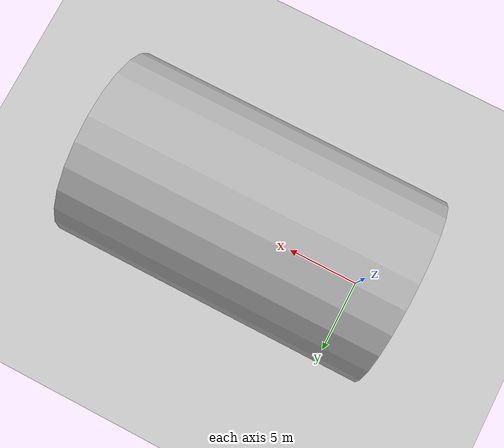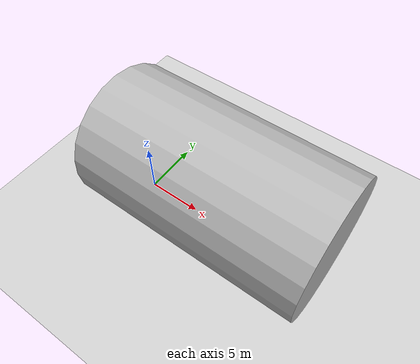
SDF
<?xml version="1.0" ?>
<sdf version="1.7">
  <world name="spray_world">

    <!-- 必要系统：物理、场景广播、传感器 -->
    <plugin filename="libignition-gazebo-physics-system.so"
            name="ignition::gazebo::systems::Physics"/>

    <plugin filename="libignition-gazebo-scene-broadcaster-system.so"
            name="ignition::gazebo::systems::SceneBroadcaster"/>

    <plugin filename="libignition-gazebo-sensors-system.so"
            name="ignition::gazebo::systems::Sensors"/>

    <!-- 光源 -->
    <include>
      <uri>https://fuel.gazebosim.org/1.0/OpenRobotics/models/Sun</uri>
    </include>

    <!-- 地面 -->
    <include>
      <uri>https://fuel.gazebosim.org/1.0/OpenRobotics/models/Ground Plane</uri>
    </include>

    <!-- 一个简化的“船体曲面”（大圆柱） -->
    <model name="ship_hull_mock" static="true">
      <pose>8 0 6.5 0 1.5708 0</pose>
      <link name="link">
        <collision name="collision">
          <geometry>
            <cylinder>
              <radius>6.0</radius>
              <length>20.0</length>
            </cylinder>
          </geometry>
        </collision>
        <visual name="visual">
          <geometry>
            <cylinder>
              <radius>6.0</radius>
              <length>20.0</length>
            </cylinder>
          </geometry>
        </visual>
      </link>
    </model>

    <!-- 喷涂系统基座 + 雷达 -->
    <model name="spray_base" static="true">
      <pose>0 0 0 0 0 0</pose>

      <link name="base_link">
        <visual name="base_visual">
          <geometry>
            <box>
              <size>1 1 0.2</size>
            </box>
          </geometry>
        </visual>

        <!-- GPU LiDAR（front） -->
        <sensor name="lidar_front" type="gpu_lidar">
          <pose>0.5 0 0.5 0 0 0</pose>
          <update_rate>10</update_rate>

          <!-- Gazebo 内部 topic -->
          <topic>/lidar/front/points</topic>

          <lidar>
            <scan>
              <horizontal>
                <samples>2048</samples>
                <min_angle>-3.14159</min_angle>
                <max_angle> 3.14159</max_angle>
              </horizontal>
              <vertical>
                <samples>64</samples>
                <min_angle>-0.52</min_angle>
                <max_angle> 0.52</max_angle>
              </vertical>
            </scan>
            <range>
              <min>0.1</min>
              <max>40.0</max>
            </range>
          </lidar>
        </sensor>

      </link>
    </model>

  </world>
</sdf>
